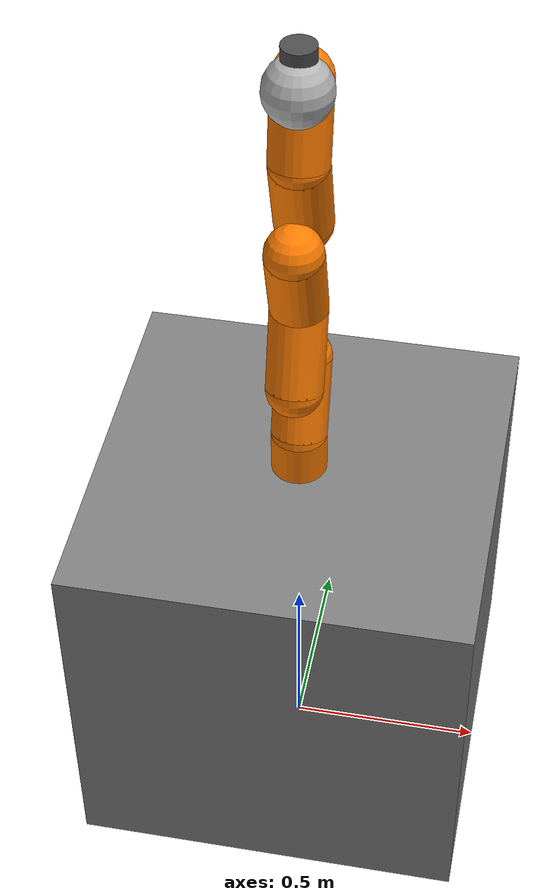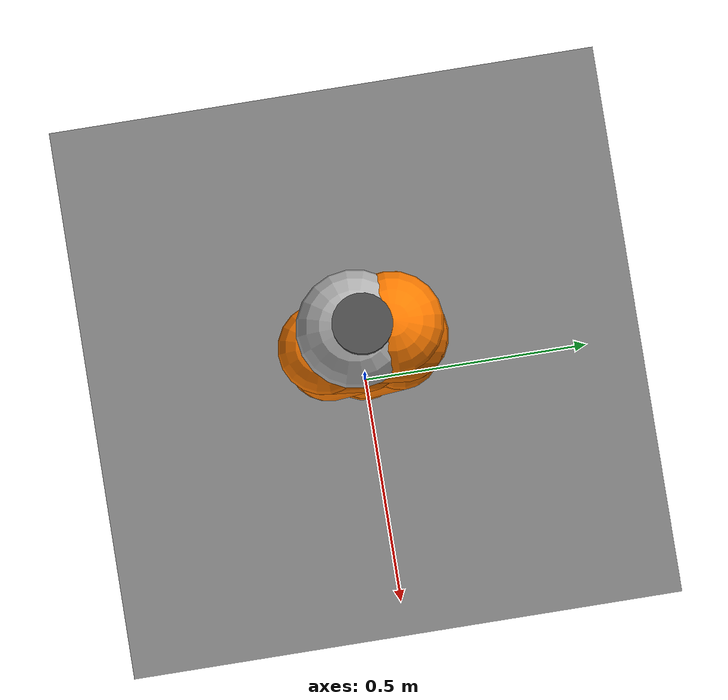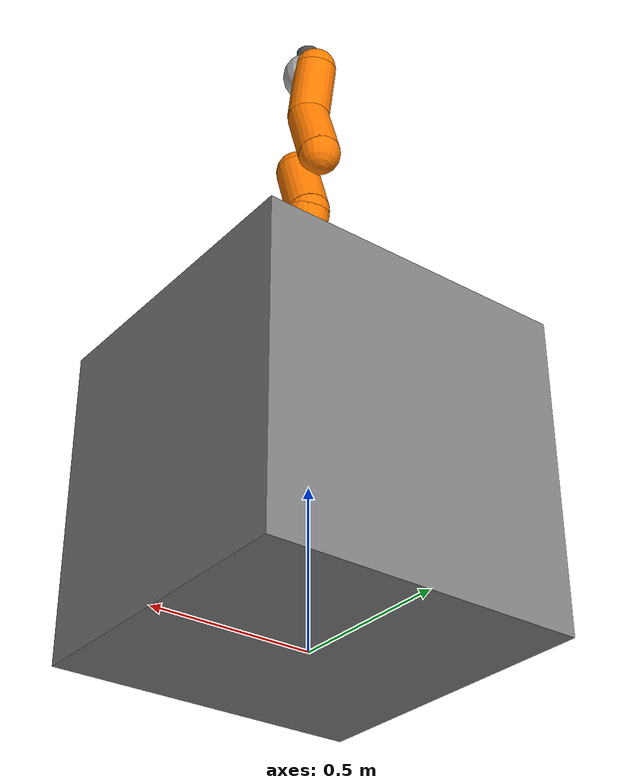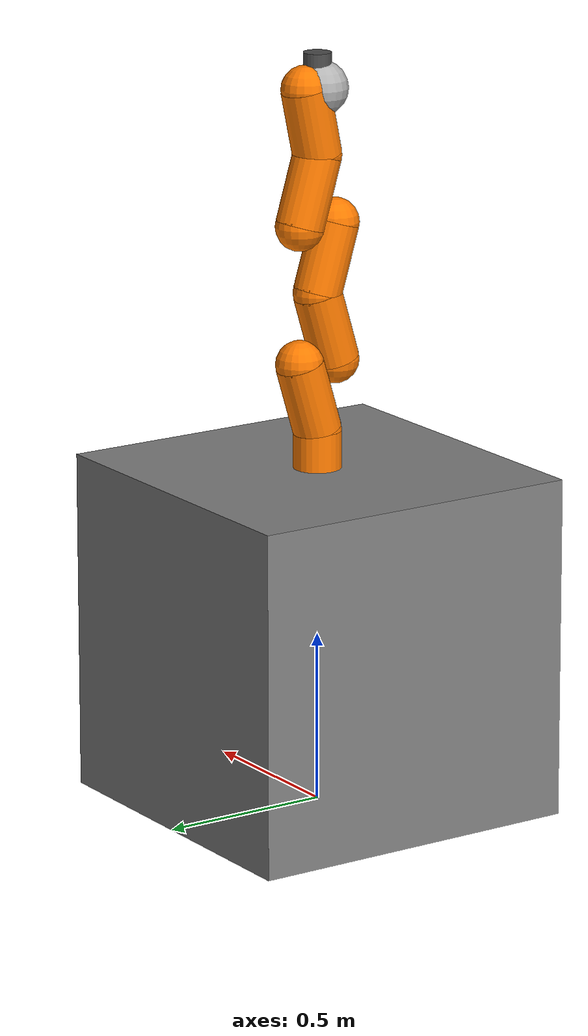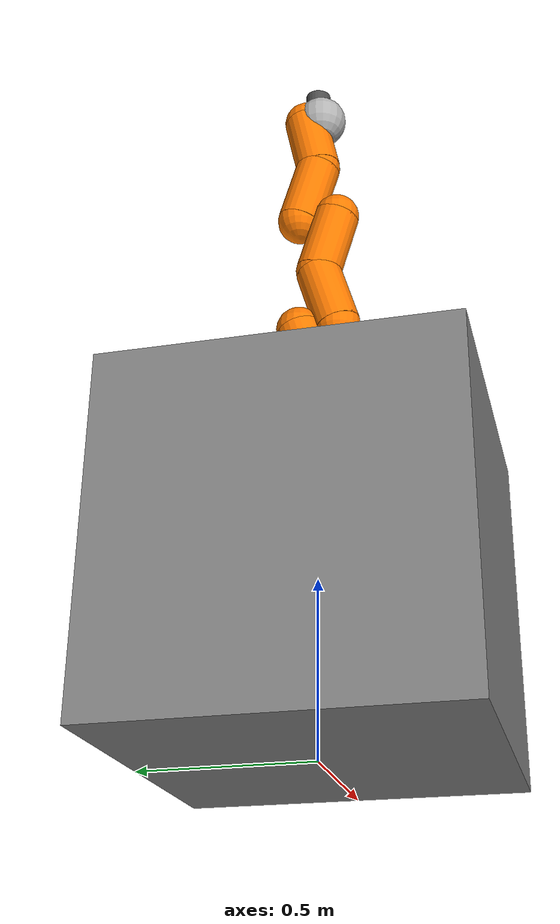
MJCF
<mujoco model="single_lwr_robot">
    <compiler angle="radian" />
    <size njmax="500" nconmax="100" />
    <worldbody>
        <body name="box" pos="0 0 0">
            <inertial pos="0 0 0" mass="5" diaginertia="0.01 0.01 0.01" />
            <geom size="0.5 0.5 0.5" pos="0 0 0.5" type="box" />
            <body name="lwr_base_link" pos="0 0 1">
                <inertial pos="0 0 0.055" quat="0.707107 0.707107 0 0" mass="2" diaginertia="0.00381667 0.00381667 0.0036" />
                <geom size="0.07 0.055" pos="0 0 0.055" quat="0 0 0 1" type="cylinder" rgba="1 0.487 0 1" />
                <body name="lwr_1_link" pos="0 0 0.11">
                    <inertial pos="0 -0.06 0.13" quat="0.707107 0.707107 0 0" mass="2.35" diaginertia="0.0160583 0.0139433 0.003525" />
                    <joint name="lwr_a1_joint" pos="0 0 0" axis="0 0 1" limited="true" range="-2.96706 2.96706" />
                    <geom size="0.07" rgba="1 0.487 0 1" />
                    <geom size="0.07" pos="0 0.06 0.2" rgba="1 0.487 0 1" />
                    <geom size="0.07 0.104" pos="0 0.03 0.1" quat="0.989434 -0.144987 0 0" type="cylinder" rgba="1 0.487 0 1" />
                    <body name="lwr_2_link" pos="0 0 0.2005">
                        <inertial pos="0 0.06 0.07" quat="0.707107 0.707107 0 0" mass="2.35" diaginertia="0.0160583 0.0139433 0.003525" />
                        <joint name="lwr_a2_joint" pos="0 0 0" axis="0 -1 0" limited="true" range="-2.0944 2.0944" />
                        <geom size="0.07" pos="0 0 0.2" rgba="1 0.487 0 1" />
                        <geom size="0.07" pos="0 -0.06 0" rgba="1 0.487 0 1" />
                        <geom size="0.07 0.104" pos="0 -0.03 0.1" quat="0.989434 -0.144987 0 0" type="cylinder" rgba="1 0.487 0 1" />
                        <body name="lwr_3_link" pos="0 0 0.2">
                            <inertial pos="0 0.06 0.13" quat="0.707107 0.707107 0 0" mass="2.35" diaginertia="0.0160583 0.0139433 0.003525" />
                            <joint name="lwr_e1_joint" pos="0 0 0" axis="0 0 1" limited="true" range="-2.96706 2.96706" />
                            <geom size="0.07" rgba="1 0.487 0 1" />
                            <geom size="0.07" pos="0 -0.06 0.2" rgba="1 0.487 0 1" />
                            <geom size="0.07 0.104" pos="0 -0.03 0.1" quat="0.989434 0.144987 0 0" type="cylinder" rgba="1 0.487 0 1" />
                            <body name="lwr_4_link" pos="0 0 0.2">
                                <inertial pos="0 -0.06 0.07" quat="0.707107 0.707107 0 0" mass="2.35" diaginertia="0.0160583 0.0139433 0.003525" />
                                <joint name="lwr_a3_joint" pos="0 0 0" axis="0 1 0" limited="true" range="-2.0944 2.0944" />
                                <geom size="0.07" pos="0 0 0.2" rgba="1 0.487 0 1" />
                                <geom size="0.07" pos="0 0.06 0" rgba="1 0.487 0 1" />
                                <geom size="0.07 0.104" pos="0 0.03 0.1" quat="0.989434 0.144987 0 0" type="cylinder" rgba="1 0.487 0 1" />
                                <body name="lwr_5_link" pos="0 0 0.2">
                                    <inertial pos="0 0 0.124" quat="0.707107 0.707107 0 0" mass="2.35" diaginertia="0.0148645 0.0127495 0.003525" />
                                    <joint name="lwr_a4_joint" pos="0 0 0" axis="0 0 1" limited="true" range="-2.96706 2.96706" />
                                    <geom size="0.07" rgba="1 0.487 0 1" />
                                    <geom size="0.07" pos="0 0.04 0.19" rgba="1 0.487 0 1" />
                                    <geom size="0.07 0.099" pos="0 0.02 0.095" quat="0.994649 -0.103315 0 0" type="cylinder" rgba="1 0.487 0 1" />
                                    <body name="lwr_6_link" pos="0 0 0.19">
                                        <inertial pos="0 0 0.0625" mass="1.1" diaginertia="0.00286458 0.00286458 0.00286458" />
                                        <joint name="lwr_a5_joint" pos="0 0 0" axis="0 -1 0" limited="true" range="-2.0944 2.0944" />
                                        <geom size="0.08" pos="0 -0.01 0" quat="0 0 0 1" rgba="0.7 0.7 0.7 1" />
                                        <body name="lwr_7_link" pos="0 0 0.078">
                                            <inertial pos="0 0 0" mass="0.25" diaginertia="0.000416667 0.000416667 0.000416667" />
                                            <joint name="lwr_a6_joint" pos="0 0 0" axis="0 0 1" limited="true" range="-2.96706 2.96706" />
                                            <geom size="0.04 0.025" quat="0 0 0 1" type="cylinder" rgba="0.3 0.3 0.3 1" />
                                        </body>
                                    </body>
                                </body>
                            </body>
                        </body>
                    </body>
                </body>
            </body>
        </body>
    </worldbody>
</mujoco>
